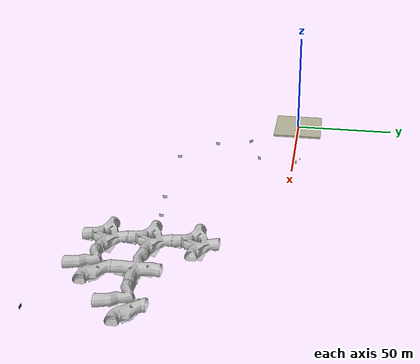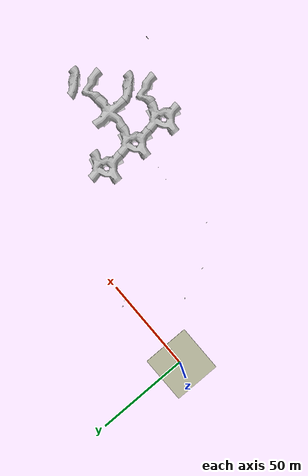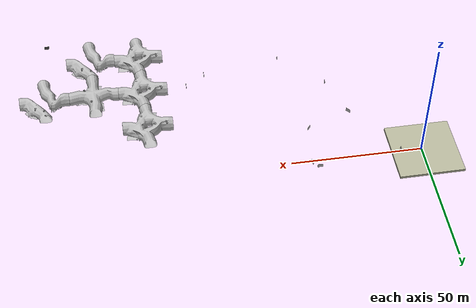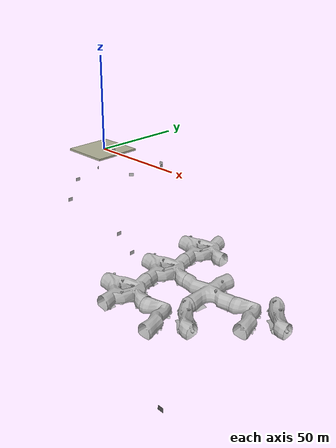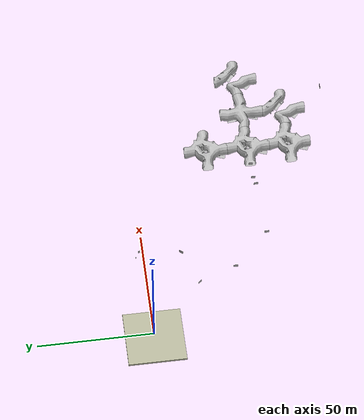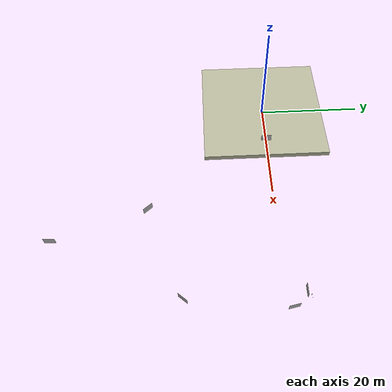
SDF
<sdf version="1.6">
 <world name="default">
  <light name="use_light_source" type="spot">
   <pose>40 2 2.4 0.845327 0 0</pose>
   <attenuation>
    <range>50</range>
    <linear>0.03</linear>
    <constant>0.01</constant>
    <quadratic>0.0025</quadratic>
   </attenuation>
   <cast_shadows>0</cast_shadows>
   <diffuse>0.4 0.4 0.4 1</diffuse>
   <specular>0.01 0.01 0.01 1</specular>
   <spot><inner_angle>1</inner_angle><outer_angle>2</outer_angle><falloff>1</falloff></spot>
  </light>
  <scene>
   <ambient>0 0 0 1.0</ambient>
   <background>0.34 0.39 0.43 1.0</background>
   <grid>false</grid>
   <origin_visual>false</origin_visual>
   <shadows>false</shadows>
  </scene>
  <model name="staging">
   <pose>-1.181716 0 -0.002 0 0 0</pose>
   <static>true</static>
   <link name="link">
    <pose>0 0 -0.5 0 0 0</pose>
    <visual name="visual">
     <geometry><box><size>25 25 1</size></box></geometry>
     <material>
      <script><uri>file://media/materials/scripts/gazebo.material</uri><name>Gazebo/Residential</name></script>
     </material>
    </visual>
    <collision name="collision"><geometry><box><size>25 20 1</size></box></geometry></collision>
   </link>
  </model>
  <model name="start_area">
   <static>true</static>
   <pose>10
        0
        1.5
        0
        0
        0</pose>
   <link name="link">
    <collision name="collision">
     <geometry><box><size>1.0
                5.0
                3.0</size></box></geometry>
     <surface><contact><collide_without_contact>1</collide_without_contact></contact></surface>
    </collision>
    <sensor name="start_area_sensor" type="contact"><contact><collision>collision</collision></contact></sensor>
   </link>
  </model>
  <light name="user_point_light_0" type="point">
   <pose>118 -97 -5 0 0 0</pose>
   <diffuse>.6 .6 .6 1</diffuse>
   <specular>0.2 0.2 0.2 1</specular>
   <attenuation>
    <range>50</range>
    <constant>0.5</constant>
    <linear>0.01</linear>
    <quadratic>0.0</quadratic>
   </attenuation>
   <cast_shadows>0</cast_shadows>
  </light>
  <include>
   <uri>model://cave_tile_1</uri>
   <name>cave1</name>
   <pose>100.854225 -55.696297 -10.661081 0 0 1.570801</pose>
  </include>
  <include>
   <uri>model://cave_tile_1</uri>
   <name>cave2</name>
   <pose>100.854225 -36 -10.661081 0 0 1.570801</pose>
  </include>
  <include>
   <uri>model://cave_tile_1</uri>
   <name>cave3</name>
   <pose>100.854225 -75 -10.661081 0 0 1.570801</pose>
  </include>
  <include>
   <uri>model://cave_tile_3</uri>
   <name>cave4</name>
   <pose>120.773964 -55.696297 -10.661081 0 0 1.570801</pose>
  </include>
  <include>
   <uri>model://cave_tile_4</uri>
   <name>cave5</name>
   <pose>120.773964 -75.666297 -10.661081 0 0 1.570801</pose>
  </include>
  <include>
   <uri>model://cave_tile_4</uri>
   <name>cave6</name>
   <pose>140.753964 -55.696297 -10.661081 0 0 1.570801</pose>
  </include>
  <include><uri>model://lidar_3d_v2</uri><pose>40.5 4 1 0 0 1.570796</pose><static>true</static></include>
  <include><uri>model://mono_camera</uri><pose>41 4 1  0 0 3.1415</pose><static>true</static></include>
  <include><uri>model://slide-tunnel</uri><pose>8 0 -0.3 0 0 1.5707</pose></include>
  <include><uri>model://slide-objs</uri><pose>42.234451 1.049701 -0.566868 0 0 -1.377081</pose></include>
  <include><uri>model://slide-starterkit</uri><pose>39.835457 3.403061 -0.243738 0 0 0</pose></include>
  <include><uri>model://slide-score</uri><pose>40.01 -16.739323 -0.836854 0 0 0.869242</pose></include>
  <include><uri>model://slide-debris</uri><pose>23.250145 -22.971689 -0.348316 0 0 2.280252</pose></include>
  <include><uri>model://slide-mine</uri><pose>29.131363 -39.493889 0.028019 0 0 1.529906</pose></include>
  <include><uri>model://slide-incline</uri><pose>45.405396 -55.777718 0.028019 0 0 1.5707</pose></include>
  <include><uri>model://slide-vertical</uri><pose>75.595894 -55.702129 -4.911947 0 0 1.5707</pose></include>
  <include><uri>model://slide-deadend</uri><pose>82.978394 -55.702129 -10.174059 0 0 1.5707</pose></include>
  <include><uri>model://slide-cave</uri><pose>90.766670 -55.702129 -10.174059 0 0 1.5707</pose></include>
  <include><uri>model://slide-urban</uri><pose>127.556641 -75.758972 -9.545166 0 0 0.461679</pose></include>
  <include><uri>model://slide-roadmap</uri><pose>139.035858 -97.026489 -18.865757 0 0 3.1415</pose></include>
 </world>
</sdf>

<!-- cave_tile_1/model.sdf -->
<sdf version="1.6">
  <model name="cave_tile_1">
    <static>true</static>
    <link name="link">
      <collision name="collision">
        <geometry>
          <mesh>
            <uri>model://cave_tile_1/meshes/cave_tile_1.dae</uri>
          </mesh>
        </geometry>
      </collision>
      <visual name="visual">
        <geometry>
          <mesh>
            <uri>model://cave_tile_1/meshes/cave_tile_1.dae</uri>
          </mesh>
        </geometry>
      </visual>
    </link>
  </model>
</sdf>

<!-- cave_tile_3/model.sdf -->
<sdf version="1.6">
  <model name="cave_tile_3">
    <static>true</static>
    <link name="link">
      <collision name="collision">
        <geometry>
          <mesh>
            <uri>model://cave_tile_3/meshes/cave_tile_3.dae</uri>
          </mesh>
        </geometry>
      </collision>
      <visual name="visual">
        <geometry>
          <mesh>
            <uri>model://cave_tile_3/meshes/cave_tile_3.dae</uri>
          </mesh>
        </geometry>
      </visual>
    </link>
  </model>
</sdf>

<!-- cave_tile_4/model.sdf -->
<sdf version="1.6">
  <model name="cave_tile_4">
    <static>true</static>
    <link name="link">
      <collision name="collision">
        <geometry>
          <mesh>
            <uri>model://cave_tile_4/meshes/cave_tile_4.dae</uri>
          </mesh>
        </geometry>
      </collision>
      <visual name="visual">
        <geometry>
          <mesh>
            <uri>model://cave_tile_4/meshes/cave_tile_4.dae</uri>
          </mesh>
        </geometry>
      </visual>
    </link>
  </model>
</sdf>

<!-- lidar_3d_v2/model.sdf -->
<sdf version="1.6">
  <model name="lidar_3d_v2">
    <link name="link">
      <pose>0 0 0 0 0 0</pose>
      <inertial>
        <pose>0 0 0.07121186 0 0 0</pose>
        <mass>0.83</mass>
        <inertia>
          <ixx>0.002853261803275034</ixx>
          <ixy>0</ixy>
          <ixz>0</ixz>
          <iyy>0.002853261803275034</iyy>
          <iyz>0</iyz>
          <izz>0.0029004988906384237</izz>
        </inertia>
      </inertial>
      <collision name="collision">
        <pose>0 0 0.07121186 0 0 0</pose>
        <geometry>
          <cylinder>
            <radius>0.08360116</radius>
            <length>0.14242372</length>
          </cylinder>
        </geometry>
      </collision>
      <visual name="visual">
        <geometry>
          <mesh>
            <uri>model://lidar_3d_v2/meshes/lidar_3d_v2.dae</uri>
          </mesh>
        </geometry>
      </visual>
    </link>
  </model>
</sdf>

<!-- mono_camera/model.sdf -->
<sdf version='1.6'>
  <model name='mono_camera'>
    <static>true</static>
    <link name='link'>
      <collision name='collision'>
        <geometry>
          <mesh>
            <uri>model://mono_camera/meshes/mono_camera.dae</uri>
          </mesh>
        </geometry>
      </collision>
      <visual name='visual'>
        <geometry>
          <mesh>
            <uri>model://mono_camera/meshes/mono_camera.dae</uri>
          </mesh>
        </geometry>
      </visual>
    </link>
  </model>
</sdf>

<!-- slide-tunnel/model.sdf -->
<sdf version='1.6'>
<model name='slide-tunnel'>
  <static>1</static>
  <link name='link'>
    <pose frame=''>0 0 1.5 0 -0 0</pose>
    <visual name='visual'>
      <geometry>
        <box>
          <size>2 0.001 1.5</size>
        </box>
      </geometry>
      <material>
        <script>
          <uri>model://slide-tunnel/materials/scripts</uri>
          <uri>model://slide-tunnel/materials/textures</uri>
          <name>Slides/slide_tunnel</name>
        </script>
      </material>
    </visual>
  </link>
</model>
</sdf>

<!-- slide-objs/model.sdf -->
<sdf version='1.6'>
<model name='slide-objs'>
  <static>1</static>
  <link name='link'>
    <pose frame=''>0 0 1.5 0 -0 0</pose>
    <visual name='visual'>
      <geometry>
        <box>
          <size>2 0.001 1.5</size>
        </box>
      </geometry>
      <material>
        <script>
          <uri>model://slide-objs/materials/scripts</uri>
          <uri>model://slide-objs/materials/textures</uri>
          <name>Slides/slide_objs</name>
        </script>
      </material>
    </visual>
  </link>
</model>
</sdf>

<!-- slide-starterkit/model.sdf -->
<sdf version='1.6'>
<model name='slide-starterkit'>
  <static>1</static>
  <link name='link'>
    <pose frame=''>0 0 1.5 0 -0 0</pose>
    <visual name='visual'>
      <geometry>
        <box>
          <size>2 0.001 1.5</size>
        </box>
      </geometry>
      <material>
        <script>
          <uri>model://slide-starterkit/materials/scripts</uri>
          <uri>model://slide-starterkit/materials/textures</uri>
          <name>Slides/slide_starterkit</name>
        </script>
      </material>
    </visual>
  </link>
</model>
</sdf>

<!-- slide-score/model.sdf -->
<sdf version='1.6'>
<model name='slide-score'>
  <static>1</static>
  <link name='link'>
    <pose frame=''>0 0 1.5 0 -0 0</pose>
    <visual name='visual'>
      <geometry>
        <box>
          <size>2 0.001 1.5</size>
        </box>
      </geometry>
      <material>
        <script>
          <uri>model://slide-score/materials/scripts</uri>
          <uri>model://slide-score/materials/textures</uri>
          <name>Slides/slide_score</name>
        </script>
      </material>
    </visual>
  </link>
</model>
</sdf>

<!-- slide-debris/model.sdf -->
<sdf version='1.6'>
<model name='slide-debris'>
  <static>1</static>
  <link name='link'>
    <pose frame=''>0 0 1.5 0 -0 0</pose>
    <visual name='visual'>
      <geometry>
        <box>
          <size>2 0.001 1.5</size>
        </box>
      </geometry>
      <material>
        <script>
          <uri>model://slide-debris/materials/scripts</uri>
          <uri>model://slide-debris/materials/textures</uri>
          <name>Slides/slide_debris</name>
        </script>
      </material>
    </visual>
  </link>
</model>
</sdf>

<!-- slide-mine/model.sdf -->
<sdf version='1.6'>
<model name='slide-mine'>
  <static>1</static>
  <link name='link'>
    <pose frame=''>0 0 1.5 0 -0 0</pose>
    <visual name='visual'>
      <geometry>
        <box>
          <size>2 0.001 1.5</size>
        </box>
      </geometry>
      <material>
        <script>
          <uri>model://slide-mine/materials/scripts</uri>
          <uri>model://slide-mine/materials/textures</uri>
          <name>Slides/slide_mine</name>
        </script>
      </material>
    </visual>
  </link>
</model>
</sdf>

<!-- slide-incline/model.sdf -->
<sdf version='1.6'>
<model name='slide-incline'>
  <static>1</static>
  <link name='link'>
    <pose frame=''>0 0 1.5 0 -0 0</pose>
    <visual name='visual'>
      <geometry>
        <box>
          <size>2 0.001 1.5</size>
        </box>
      </geometry>
      <material>
        <script>
          <uri>model://slide-incline/materials/scripts</uri>
          <uri>model://slide-incline/materials/textures</uri>
          <name>Slides/slide_incline</name>
        </script>
      </material>
    </visual>
  </link>
</model>
</sdf>

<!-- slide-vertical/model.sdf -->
<sdf version='1.6'>
<model name='slide-vertical'>
  <static>1</static>
  <link name='link'>
    <pose frame=''>0 0 1.5 0 -0 0</pose>
    <visual name='visual'>
      <geometry>
        <box>
          <size>2 0.001 1.5</size>
        </box>
      </geometry>
      <material>
        <script>
          <uri>model://slide-vertical/materials/scripts</uri>
          <uri>model://slide-vertical/materials/textures</uri>
          <name>Slides/slide_vertical</name>
        </script>
      </material>
    </visual>
  </link>
</model>
</sdf>

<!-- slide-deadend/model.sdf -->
<sdf version='1.6'>
<model name='slide-deadend'>
  <static>1</static>
  <link name='link'>
    <pose frame=''>0 0 1.5 0 -0 0</pose>
    <visual name='visual'>
      <geometry>
        <box>
          <size>2 0.001 1.5</size>
        </box>
      </geometry>
      <material>
        <script>
          <uri>model://slide-deadend/materials/scripts</uri>
          <uri>model://slide-deadend/materials/textures</uri>
          <name>Slides/slide_deadend</name>
        </script>
      </material>
    </visual>
  </link>
</model>
</sdf>

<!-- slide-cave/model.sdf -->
<sdf version='1.6'>
<model name='slide-cave'>
  <static>1</static>
  <link name='link'>
    <pose frame=''>0 0 1.5 0 -0 0</pose>
    <visual name='visual'>
      <geometry>
        <box>
          <size>2 0.001 1.5</size>
        </box>
      </geometry>
      <material>
        <script>
          <uri>model://slide-cave/materials/scripts</uri>
          <uri>model://slide-cave/materials/textures</uri>
          <name>Slides/slide_cave</name>
        </script>
      </material>
    </visual>
  </link>
</model>
</sdf>

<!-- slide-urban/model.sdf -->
<sdf version='1.6'>
<model name='slide-urban'>
  <static>1</static>
  <link name='link'>
    <pose frame=''>0 0 1.5 0 -0 0</pose>
    <visual name='visual'>
      <geometry>
        <box>
          <size>2 0.001 1.5</size>
        </box>
      </geometry>
      <material>
        <script>
          <uri>model://slide-urban/materials/scripts</uri>
          <uri>model://slide-urban/materials/textures</uri>
          <name>Slides/slide_urban</name>
        </script>
      </material>
    </visual>
  </link>
</model>
</sdf>

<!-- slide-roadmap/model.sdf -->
<sdf version='1.6'>
<model name='slide-roadmap'>
  <static>1</static>
  <link name='link'>
    <pose frame=''>0 0 1.5 0 -0 0</pose>
    <visual name='visual'>
      <geometry>
        <box>
          <size>2 0.001 1.5</size>
        </box>
      </geometry>
      <material>
        <script>
          <uri>model://slide-roadmap/materials/scripts</uri>
          <uri>model://slide-roadmap/materials/textures</uri>
          <name>Slides/slide_roadmap</name>
        </script>
      </material>
    </visual>
  </link>
</model>
</sdf>
